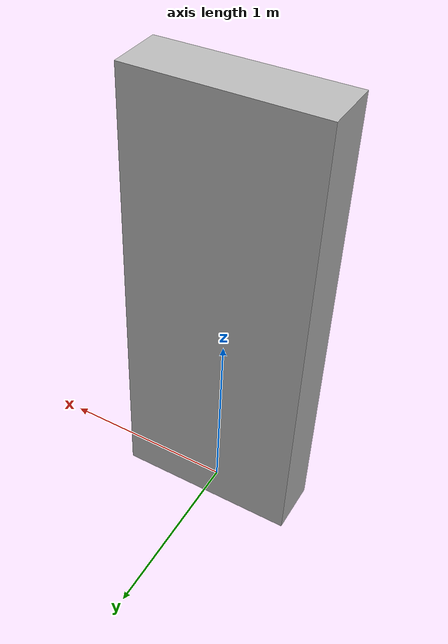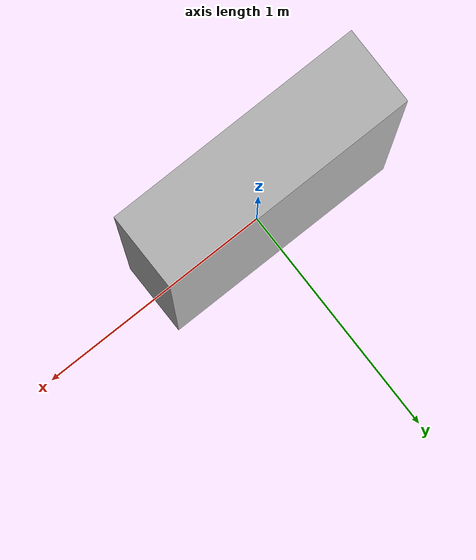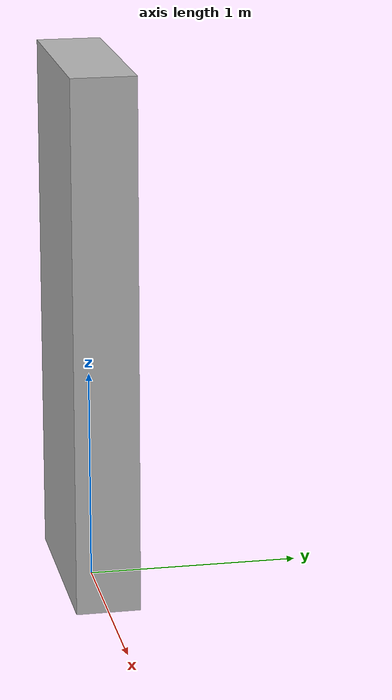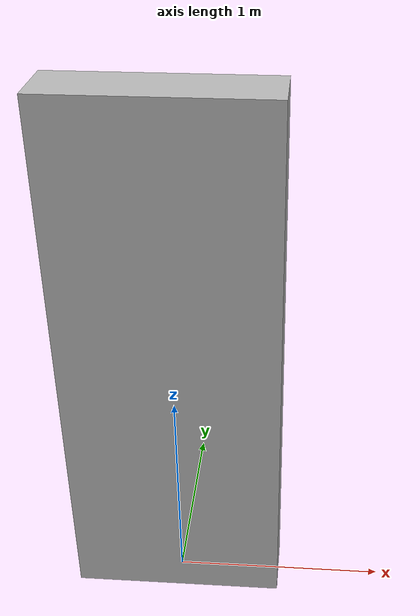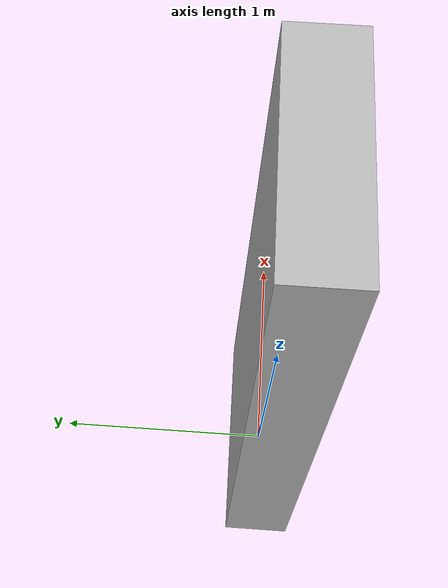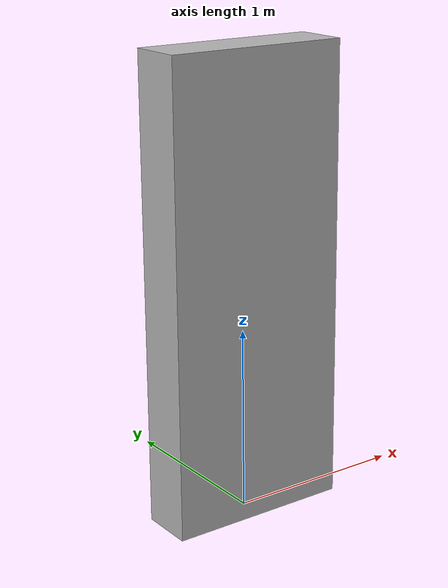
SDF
<?xml version="1.0" ?>
<sdf version="1.5">
  <model name="concrete_wall_1m">
    <static>true</static>
    <link name="link">
      <pose>0 0 1.25 0 0 0</pose>
      <collision name="collision">
        <geometry>
          <box>
            <size>1.0 0.3 2.5</size>
          </box>
        </geometry>
      </collision>
      <visual name="visual">
        <geometry>
          <box>
            <size>1.0 0.3 2.5</size>
          </box>
        </geometry>
        <material>
          <script>
            <uri>model://concrete_wall_1m/materials/scripts</uri>
            <uri>model://concrete_wall_1m/materials/textures</uri>
            <name>vrc/concrete_wall_1m</name>
          </script>
        </material>
      </visual>
    </link>
  </model>
</sdf>
